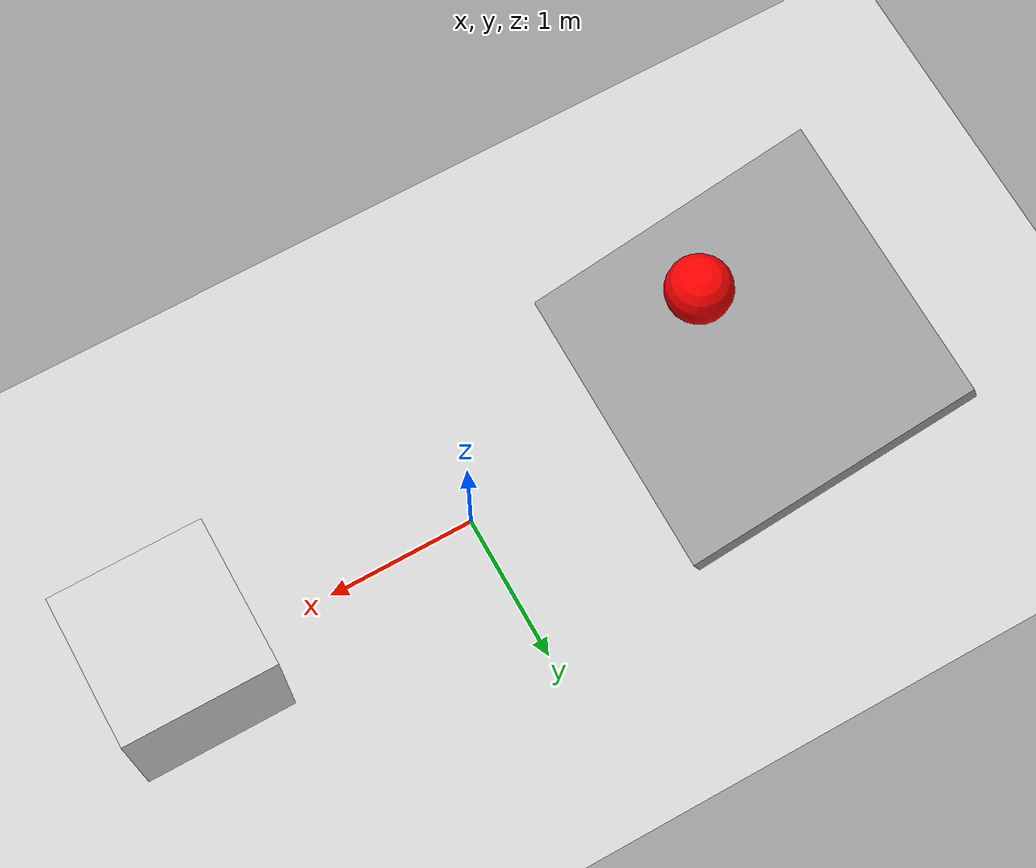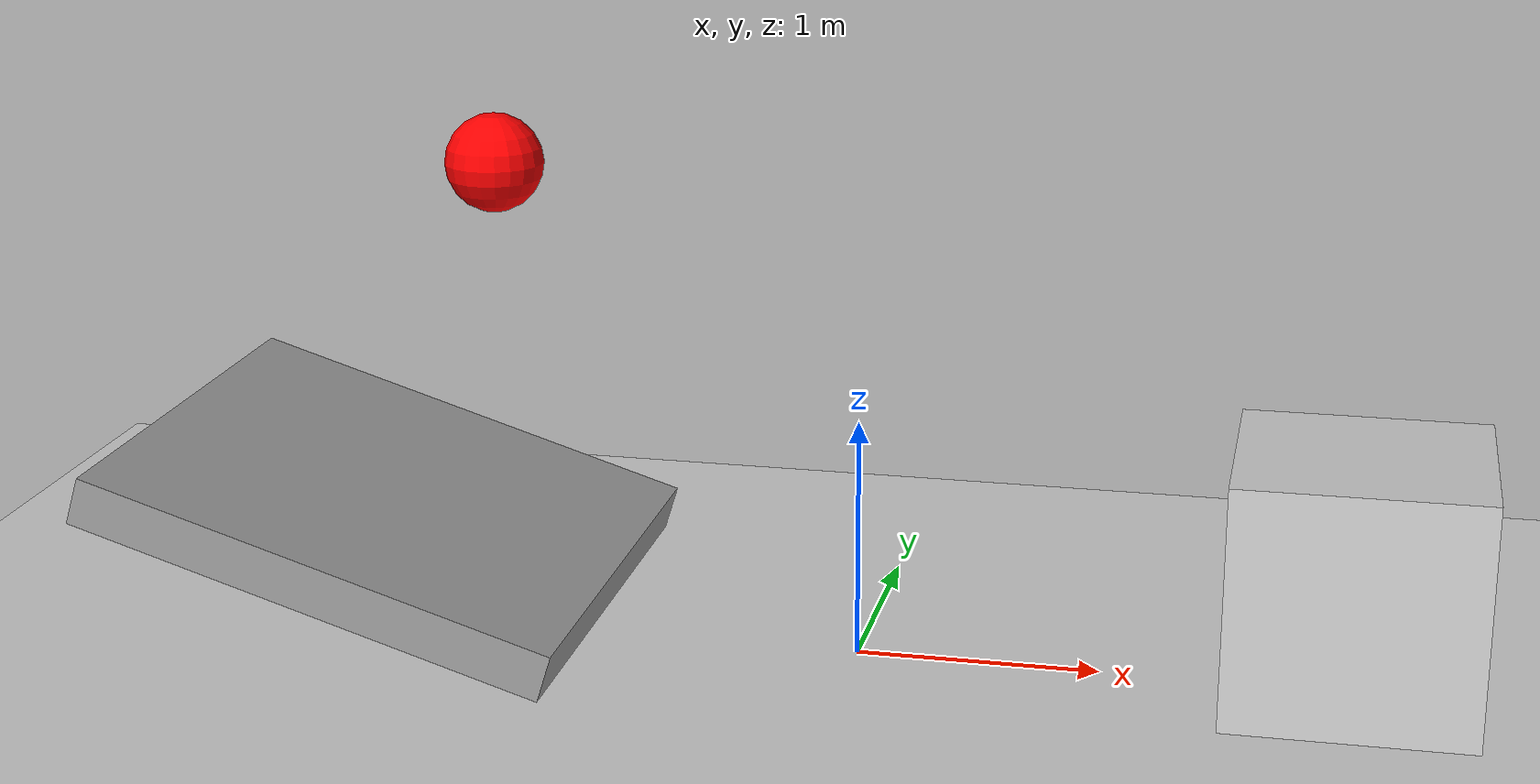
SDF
<?xml version="1.0" ?>
<sdf version="1.6">
  <world name="simple_physics_world">
    <!-- Include the default outdoor environment -->
    <include>
      <uri>model://ground_plane</uri>
    </include>

    <include>
      <uri>model://sun</uri>
    </include>

    <!-- Add a simple box obstacle -->
    <model name="box_obstacle">
      <pose>2 0 0.5 0 0 0</pose>
      <static>false</static>
      <link name="link">
        <collision name="collision">
          <geometry>
            <box>
              <size>1 1 1</size>
            </box>
          </geometry>
          <surface>
            <friction>
              <ode>
                <mu>1.0</mu>
                <mu2>1.0</mu2>
              </ode>
            </friction>
            <contact>
              <ode>
                <kp>1e+05</kp>
                <kd>100</kd>
              </ode>
            </contact>
          </surface>
        </collision>
        <visual name="visual">
          <geometry>
            <box>
              <size>1 1 1</size>
            </box>
          </geometry>
          <material>
            <ambient>0.5 0.5 0.5 1</ambient>
            <diffuse>0.8 0.8 0.8 1</diffuse>
          </material>
        </visual>
        <inertial>
          <mass>1.0</mass>
          <inertia>
            <ixx>0.166667</ixx>
            <ixy>0</ixy>
            <ixz>0</ixz>
            <iyy>0.166667</iyy>
            <iyz>0</iyz>
            <izz>0.166667</izz>
          </inertia>
        </inertial>
      </link>
    </model>

    <!-- Add a simple ramp -->
    <model name="ramp">
      <pose>-2 0 0.5 0 0.3 0</pose>
      <static>true</static>
      <link name="link">
        <collision name="collision">
          <geometry>
            <box>
              <size>2 2 0.2</size>
            </box>
          </geometry>
        </collision>
        <visual name="visual">
          <geometry>
            <box>
              <size>2 2 0.2</size>
            </box>
          </geometry>
          <material>
            <ambient>0.3 0.3 0.3 1</ambient>
            <diffuse>0.6 0.6 0.6 1</diffuse>
          </material>
        </visual>
      </link>
    </model>

    <!-- Add a ball that will roll down the ramp -->
    <model name="ball">
      <pose>-1.5 0 2 0 0 0</pose>
      <static>false</static>
      <link name="link">
        <collision name="collision">
          <geometry>
            <sphere>
              <radius>0.2</radius>
            </sphere>
          </geometry>
          <surface>
            <friction>
              <ode>
                <mu>0.5</mu>
                <mu2>0.5</mu2>
              </ode>
            </friction>
          </surface>
        </collision>
        <visual name="visual">
          <geometry>
            <sphere>
              <radius>0.2</radius>
            </sphere>
          </geometry>
          <material>
            <ambient>1 0 0 1</ambient>
            <diffuse>1 0 0 1</diffuse>
          </material>
        </visual>
        <inertial>
          <mass>0.5</mass>
          <inertia>
            <ixx>0.02</ixx>
            <ixy>0</ixy>
            <ixz>0</ixz>
            <iyy>0.02</iyy>
            <iyz>0</iyz>
            <izz>0.02</izz>
          </inertia>
        </inertial>
      </link>
    </model>

  </world>
</sdf>
